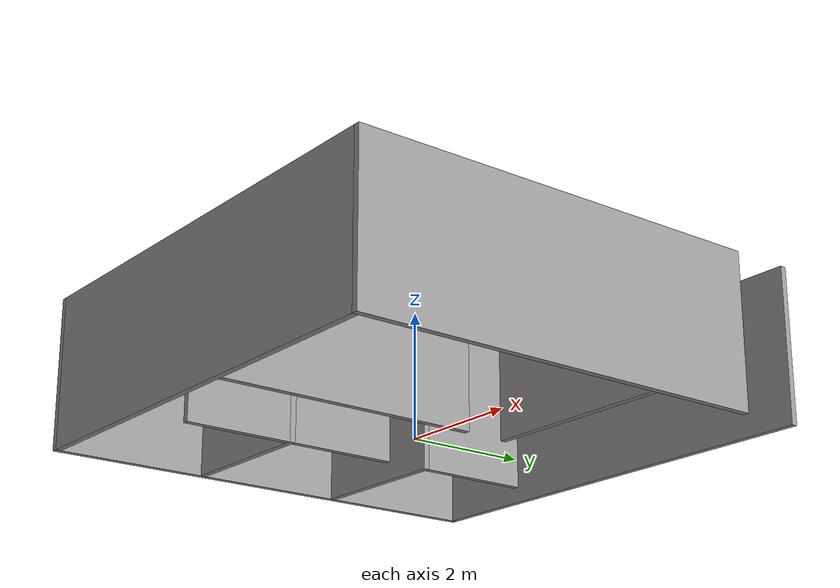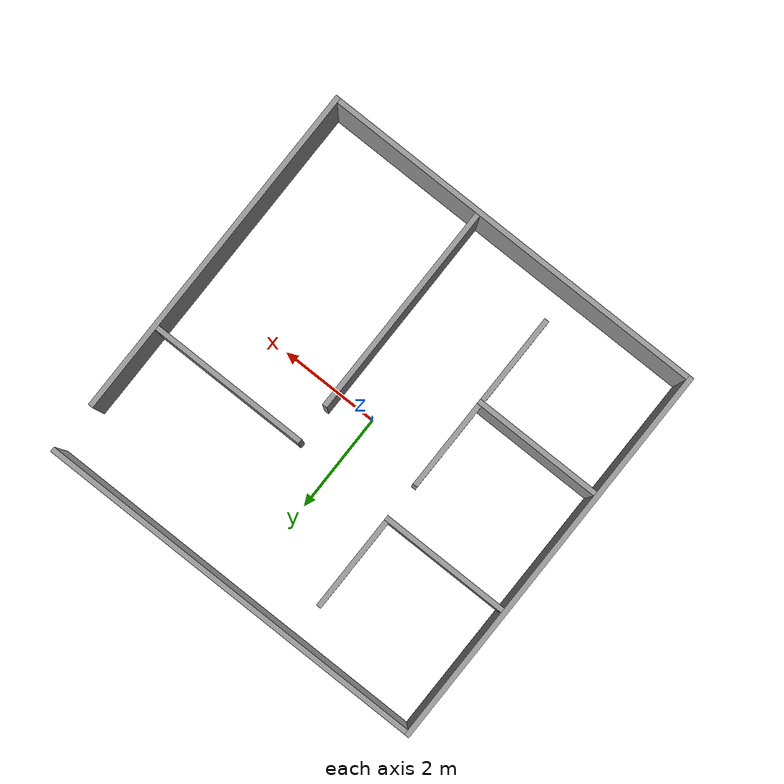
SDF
<?xml version="1.0" ?>
  <sdf version="1.5">
  <model name='office'>

    <static>1</static>

    <link name='Wall_10'>
        <pose>-3.950 0.0 1.25 0.0 0.0 0.0</pose>

        <visual name='Wall_10_Visual'>
            <pose>0 0 0 0 -0 0</pose>
            <geometry>
                <box>
                    <size>0.1 8.0 2.5</size>
                </box>
            </geometry>
              <material>
                <ambient>0.6 0.6 0.6 1</ambient>
                <diffuse>0.6 0.6 0.6 1</diffuse>
                <specular>0.6 0.6 0.6 1</specular>
              </material>
        <cast_shadows>0</cast_shadows>
      </visual>

      <collision name='Wall_10_Collision'>
        <max_contacts>10</max_contacts>
        <pose>0 0 0.0 0 0 0</pose>
        <geometry>
          <box>
            <size>0.1 8.0 2.5</size>
          </box>
        </geometry>
        <surface>
          <friction>
            <ode>
              <mu>1</mu>
              <mu2>1</mu2>
              <fdir1>0 0 0</fdir1>
              <slip1>0</slip1>
              <slip2>0</slip2>
            </ode>
          </friction>
          <bounce>
            <restitution_coefficient>0</restitution_coefficient>
            <threshold>1e+06</threshold>
          </bounce>
          <contact>
            <collide_without_contact>0</collide_without_contact>
            <collide_without_contact_bitmask>1</collide_without_contact_bitmask>
            <collide_bitmask>1</collide_bitmask>
            <ode>
              <soft_cfm>0</soft_cfm>
              <soft_erp>0.2</soft_erp>
              <kp>1e+13</kp>
              <kd>1</kd>
              <max_vel>0.01</max_vel>
              <min_depth>0</min_depth>
            </ode>
            <bullet>
              <split_impulse>1</split_impulse>
              <split_impulse_penetration_threshold>-0.01</split_impulse_penetration_threshold>
              <soft_cfm>0</soft_cfm>
              <soft_erp>0.2</soft_erp>
              <kp>1e+13</kp>
              <kd>1</kd>
            </bullet>
          </contact>
        </surface>
      </collision>
    </link>

    <link name='Wall_20'>
          <pose>3.950 -0.525 1.25 0.0 0.0 0.0</pose>

          <visual name='Wall_20_Visual'>
              <pose>0 0 0 0 -0 0</pose>
              <geometry>
                  <box>
                      <size>0.1 6.950 2.5</size>
                  </box>
              </geometry>
              <material>
                <ambient>0.6 0.6 0.6 1</ambient>
                <diffuse>0.6 0.6 0.6 1</diffuse>
                <specular>0.6 0.6 0.6 1</specular>
              </material>
          <cast_shadows>0</cast_shadows>
        </visual>

        <collision name='Wall_20_Collision'>
          <max_contacts>10</max_contacts>
          <pose>0 0 0.0 0 0 0</pose>
          <geometry>
            <box>
              <size>0.1 6.950 2.5</size>
            </box>
          </geometry>
          <surface>
            <friction>
              <ode>
                <mu>1</mu>
                <mu2>1</mu2>
                <fdir1>0 0 0</fdir1>
                <slip1>0</slip1>
                <slip2>0</slip2>
              </ode>
            </friction>
            <bounce>
              <restitution_coefficient>0</restitution_coefficient>
              <threshold>1e+06</threshold>
            </bounce>
            <contact>
              <collide_without_contact>0</collide_without_contact>
              <collide_without_contact_bitmask>1</collide_without_contact_bitmask>
              <collide_bitmask>1</collide_bitmask>
              <ode>
                <soft_cfm>0</soft_cfm>
                <soft_erp>0.2</soft_erp>
                <kp>1e+13</kp>
                <kd>1</kd>
                <max_vel>0.01</max_vel>
                <min_depth>0</min_depth>
              </ode>
              <bullet>
                <split_impulse>1</split_impulse>
                <split_impulse_penetration_threshold>-0.01</split_impulse_penetration_threshold>
                <soft_cfm>0</soft_cfm>
                <soft_erp>0.2</soft_erp>
                <kp>1e+13</kp>
                <kd>1</kd>
              </bullet>
            </contact>
          </surface>
        </collision>
    </link>

    <link name='Wall_30'>
        <pose>0.0 -3.950 1.25 0.0 0.0 0.0</pose>

        <visual name='Wall_30_Visual'>
            <pose>0 0 0 0 -0 0</pose>
            <geometry>
                <box>
                    <size>7.8 0.1 2.5</size>
                </box>
            </geometry>
              <material>
                <ambient>0.6 0.6 0.6 1</ambient>
                <diffuse>0.6 0.6 0.6 1</diffuse>
                <specular>0.6 0.6 0.6 1</specular>
              </material>
        <cast_shadows>0</cast_shadows>
      </visual>

      <collision name='Wall_30_Collision'>
        <max_contacts>10</max_contacts>
        <pose>0 0 0.0 0 0 0</pose>
        <geometry>
          <box>
            <size>7.8 0.1 2.5</size>
          </box>
        </geometry>
        <surface>
          <friction>
            <ode>
              <mu>1</mu>
              <mu2>1</mu2>
              <fdir1>0 0 0</fdir1>
              <slip1>0</slip1>
              <slip2>0</slip2>
            </ode>
          </friction>
          <bounce>
            <restitution_coefficient>0</restitution_coefficient>
            <threshold>1e+06</threshold>
          </bounce>
          <contact>
            <collide_without_contact>0</collide_without_contact>
            <collide_without_contact_bitmask>1</collide_without_contact_bitmask>
            <collide_bitmask>1</collide_bitmask>
            <ode>
              <soft_cfm>0</soft_cfm>
              <soft_erp>0.2</soft_erp>
              <kp>1e+13</kp>
              <kd>1</kd>
              <max_vel>0.01</max_vel>
              <min_depth>0</min_depth>
            </ode>
            <bullet>
              <split_impulse>1</split_impulse>
              <split_impulse_penetration_threshold>-0.01</split_impulse_penetration_threshold>
              <soft_cfm>0</soft_cfm>
              <soft_erp>0.2</soft_erp>
              <kp>1e+13</kp>
              <kd>1</kd>
            </bullet>
          </contact>
        </surface>
      </collision>
    </link>

    <link name='Wall_40'>
        <pose>0.05 3.950 1.25 0.0 0.0 0.0</pose>

        <visual name='Wall_40_Visual'>
            <pose>0 0 0 0 -0 0</pose>
            <geometry>
                <box>
                    <size>7.9 0.1 2.5</size>
                </box>
            </geometry>
              <material>
                <ambient>0.6 0.6 0.6 1</ambient>
                <diffuse>0.6 0.6 0.6 1</diffuse>
                <specular>0.6 0.6 0.6 1</specular>
              </material>
        <cast_shadows>0</cast_shadows>
      </visual>

      <collision name='Wall_40_Collision'>
        <max_contacts>10</max_contacts>
        <pose>0 0 0.0 0 0 0</pose>
        <geometry>
          <box>
            <size>7.9 0.1 2.5</size>
          </box>
        </geometry>
        <surface>
          <friction>
            <ode>
              <mu>1</mu>
              <mu2>1</mu2>
              <fdir1>0 0 0</fdir1>
              <slip1>0</slip1>
              <slip2>0</slip2>
            </ode>
          </friction>
          <bounce>
            <restitution_coefficient>0</restitution_coefficient>
            <threshold>1e+06</threshold>
          </bounce>
          <contact>
            <collide_without_contact>0</collide_without_contact>
            <collide_without_contact_bitmask>1</collide_without_contact_bitmask>
            <collide_bitmask>1</collide_bitmask>
            <ode>
              <soft_cfm>0</soft_cfm>
              <soft_erp>0.2</soft_erp>
              <kp>1e+13</kp>
              <kd>1</kd>
              <max_vel>0.01</max_vel>
              <min_depth>0</min_depth>
            </ode>
            <bullet>
              <split_impulse>1</split_impulse>
              <split_impulse_penetration_threshold>-0.01</split_impulse_penetration_threshold>
              <soft_cfm>0</soft_cfm>
              <soft_erp>0.2</soft_erp>
              <kp>1e+13</kp>
              <kd>1</kd>
            </bullet>
          </contact>
        </surface>
      </collision>
    </link>

    <link name='Wall_50'>
        <pose>-1.35 -2.3 1.25 0.0 0.0 0.0</pose>

        <visual name='Wall_50_Visual'>
            <pose>0 0 0 0 -0 0</pose>
            <geometry>
                <box>
                    <size>0.1 1.8 2.5</size>
                </box>
            </geometry>
              <material>
                <ambient>0.6 0.6 0.6 1</ambient>
                <diffuse>0.6 0.6 0.6 1</diffuse>
                <specular>0.6 0.6 0.6 1</specular>
              </material>
        <cast_shadows>0</cast_shadows>
      </visual>

      <collision name='Wall_50_Collision'>
        <max_contacts>10</max_contacts>
        <pose>0 0 0.0 0 0 0</pose>
        <geometry>
          <box>
            <size>0.1 1.8 2.5</size>
          </box>
        </geometry>
        <surface>
          <friction>
            <ode>
              <mu>1</mu>
              <mu2>1</mu2>
              <fdir1>0 0 0</fdir1>
              <slip1>0</slip1>
              <slip2>0</slip2>
            </ode>
          </friction>
          <bounce>
            <restitution_coefficient>0</restitution_coefficient>
            <threshold>1e+06</threshold>
          </bounce>
          <contact>
            <collide_without_contact>0</collide_without_contact>
            <collide_without_contact_bitmask>1</collide_without_contact_bitmask>
            <collide_bitmask>1</collide_bitmask>
            <ode>
              <soft_cfm>0</soft_cfm>
              <soft_erp>0.2</soft_erp>
              <kp>1e+13</kp>
              <kd>1</kd>
              <max_vel>0.01</max_vel>
              <min_depth>0</min_depth>
            </ode>
            <bullet>
              <split_impulse>1</split_impulse>
              <split_impulse_penetration_threshold>-0.01</split_impulse_penetration_threshold>
              <soft_cfm>0</soft_cfm>
              <soft_erp>0.2</soft_erp>
              <kp>1e+13</kp>
              <kd>1</kd>
            </bullet>
          </contact>
        </surface>
      </collision>
    </link>

    <link name='Wall_60'>
        <pose>0.75 -1.75 1.25 0.0 0.0 0.0</pose>

        <visual name='Wall_60_Visual'>
            <pose>0 0 0 0 -0 0</pose>
            <geometry>
                <box>
                    <size>0.1 4.3 2.5</size>
                </box>
            </geometry>
              <material>
                <ambient>0.6 0.6 0.6 1</ambient>
                <diffuse>0.6 0.6 0.6 1</diffuse>
                <specular>0.6 0.6 0.6 1</specular>
              </material>
        <cast_shadows>0</cast_shadows>
      </visual>

      <collision name='Wall_60_Collision'>
        <max_contacts>10</max_contacts>
        <pose>0 0 0.0 0 0 0</pose>
        <geometry>
          <box>
            <size>0.1 4.3 2.5</size>
          </box>
        </geometry>
        <surface>
          <friction>
            <ode>
              <mu>1</mu>
              <mu2>1</mu2>
              <fdir1>0 0 0</fdir1>
              <slip1>0</slip1>
              <slip2>0</slip2>
            </ode>
          </friction>
          <bounce>
            <restitution_coefficient>0</restitution_coefficient>
            <threshold>1e+06</threshold>
          </bounce>
          <contact>
            <collide_without_contact>0</collide_without_contact>
            <collide_without_contact_bitmask>1</collide_without_contact_bitmask>
            <collide_bitmask>1</collide_bitmask>
            <ode>
              <soft_cfm>0</soft_cfm>
              <soft_erp>0.2</soft_erp>
              <kp>1e+13</kp>
              <kd>1</kd>
              <max_vel>0.01</max_vel>
              <min_depth>0</min_depth>
            </ode>
            <bullet>
              <split_impulse>1</split_impulse>
              <split_impulse_penetration_threshold>-0.01</split_impulse_penetration_threshold>
              <soft_cfm>0</soft_cfm>
              <soft_erp>0.2</soft_erp>
              <kp>1e+13</kp>
              <kd>1</kd>
            </bullet>
          </contact>
        </surface>
      </collision>
    </link>

    <link name='Wall_70'>
        <pose>-2.6 -1.35 1.25 0.0 0.0 0.0</pose>

        <visual name='Wall_70_Visual'>
            <pose>0 0 0 0 -0 0</pose>
            <geometry>
                <box>
                    <size>2.6 0.1 2.5</size>
                </box>
            </geometry>
              <material>
                <ambient>0.6 0.6 0.6 1</ambient>
                <diffuse>0.6 0.6 0.6 1</diffuse>
                <specular>0.6 0.6 0.6 1</specular>
              </material>
        <cast_shadows>0</cast_shadows>
      </visual>

      <collision name='Wall_70_Collision'>
        <max_contacts>10</max_contacts>
        <pose>0 0 0.0 0 0 0</pose>
        <geometry>
          <box>
            <size>2.6 0.1 2.5</size>
          </box>
        </geometry>
        <surface>
          <friction>
            <ode>
              <mu>1</mu>
              <mu2>1</mu2>
              <fdir1>0 0 0</fdir1>
              <slip1>0</slip1>
              <slip2>0</slip2>
            </ode>
          </friction>
          <bounce>
            <restitution_coefficient>0</restitution_coefficient>
            <threshold>1e+06</threshold>
          </bounce>
          <contact>
            <collide_without_contact>0</collide_without_contact>
            <collide_without_contact_bitmask>1</collide_without_contact_bitmask>
            <collide_bitmask>1</collide_bitmask>
            <ode>
              <soft_cfm>0</soft_cfm>
              <soft_erp>0.2</soft_erp>
              <kp>1e+13</kp>
              <kd>1</kd>
              <max_vel>0.01</max_vel>
              <min_depth>0</min_depth>
            </ode>
            <bullet>
              <split_impulse>1</split_impulse>
              <split_impulse_penetration_threshold>-0.01</split_impulse_penetration_threshold>
              <soft_cfm>0</soft_cfm>
              <soft_erp>0.2</soft_erp>
              <kp>1e+13</kp>
              <kd>1</kd>
            </bullet>
          </contact>
        </surface>
      </collision>
    </link>

    <link name='Wall_80'>
        <pose>-1.35 -0.4 1.25 0.0 0.0 0.0</pose>

        <visual name='Wall_80_Visual'>
            <pose>0 0 0 0 -0 0</pose>
            <geometry>
                <box>
                    <size>0.1 1.8 2.5</size>
                </box>
            </geometry>
              <material>
                <ambient>0.6 0.6 0.6 1</ambient>
                <diffuse>0.6 0.6 0.6 1</diffuse>
                <specular>0.6 0.6 0.6 1</specular>
              </material>
        <cast_shadows>0</cast_shadows>
      </visual>

      <collision name='Wall_80_Collision'>
        <max_contacts>10</max_contacts>
        <pose>0 0 0.0 0 0 0</pose>
        <geometry>
          <box>
            <size>0.1 1.8 2.5</size>
          </box>
        </geometry>
        <surface>
          <friction>
            <ode>
              <mu>1</mu>
              <mu2>1</mu2>
              <fdir1>0 0 0</fdir1>
              <slip1>0</slip1>
              <slip2>0</slip2>
            </ode>
          </friction>
          <bounce>
            <restitution_coefficient>0</restitution_coefficient>
            <threshold>1e+06</threshold>
          </bounce>
          <contact>
            <collide_without_contact>0</collide_without_contact>
            <collide_without_contact_bitmask>1</collide_without_contact_bitmask>
            <collide_bitmask>1</collide_bitmask>
            <ode>
              <soft_cfm>0</soft_cfm>
              <soft_erp>0.2</soft_erp>
              <kp>1e+13</kp>
              <kd>1</kd>
              <max_vel>0.01</max_vel>
              <min_depth>0</min_depth>
            </ode>
            <bullet>
              <split_impulse>1</split_impulse>
              <split_impulse_penetration_threshold>-0.01</split_impulse_penetration_threshold>
              <soft_cfm>0</soft_cfm>
              <soft_erp>0.2</soft_erp>
              <kp>1e+13</kp>
              <kd>1</kd>
            </bullet>
          </contact>
        </surface>
      </collision>
    </link>

    <link name='Wall_90'>
        <pose>2.3 1.15 1.25 0.0 0.0 0.0</pose>

        <visual name='Wall_90_Visual'>
            <pose>0 0 0 0 -0 0</pose>
            <geometry>
                <box>
                    <size>3.2 0.1 2.5</size>
                </box>
            </geometry>
              <material>
                <ambient>0.6 0.6 0.6 1</ambient>
                <diffuse>0.6 0.6 0.6 1</diffuse>
                <specular>0.6 0.6 0.6 1</specular>
              </material>
        <cast_shadows>0</cast_shadows>
      </visual>

      <collision name='Wall_90_Collision'>
        <max_contacts>10</max_contacts>
        <pose>0 0 0.0 0 0 0</pose>
        <geometry>
          <box>
            <size>3.2 0.1 2.5</size>
          </box>
        </geometry>
        <surface>
          <friction>
            <ode>
              <mu>1</mu>
              <mu2>1</mu2>
              <fdir1>0 0 0</fdir1>
              <slip1>0</slip1>
              <slip2>0</slip2>
            </ode>
          </friction>
          <bounce>
            <restitution_coefficient>0</restitution_coefficient>
            <threshold>1e+06</threshold>
          </bounce>
          <contact>
            <collide_without_contact>0</collide_without_contact>
            <collide_without_contact_bitmask>1</collide_without_contact_bitmask>
            <collide_bitmask>1</collide_bitmask>
            <ode>
              <soft_cfm>0</soft_cfm>
              <soft_erp>0.2</soft_erp>
              <kp>1e+13</kp>
              <kd>1</kd>
              <max_vel>0.01</max_vel>
              <min_depth>0</min_depth>
            </ode>
            <bullet>
              <split_impulse>1</split_impulse>
              <split_impulse_penetration_threshold>-0.01</split_impulse_penetration_threshold>
              <soft_cfm>0</soft_cfm>
              <soft_erp>0.2</soft_erp>
              <kp>1e+13</kp>
              <kd>1</kd>
            </bullet>
          </contact>
        </surface>
      </collision>
    </link>

    <link name='Wall_100'>
        <pose>-2.6 1.25 1.25 0.0 0.0 0.0</pose>

        <visual name='Wall_100_Visual'>
            <pose>0 0 0 0 -0 0</pose>
            <geometry>
                <box>
                    <size>2.6 0.1 2.5</size>
                </box>
            </geometry>
              <material>
                <ambient>0.6 0.6 0.6 1</ambient>
                <diffuse>0.6 0.6 0.6 1</diffuse>
                <specular>0.6 0.6 0.6 1</specular>
              </material>
        <cast_shadows>0</cast_shadows>
      </visual>

      <collision name='Wall_100_Collision'>
        <max_contacts>10</max_contacts>
        <pose>0 0 0.0 0 0 0</pose>
        <geometry>
          <box>
            <size>2.6 0.1 2.5</size>
          </box>
        </geometry>
        <surface>
          <friction>
            <ode>
              <mu>1</mu>
              <mu2>1</mu2>
              <fdir1>0 0 0</fdir1>
              <slip1>0</slip1>
              <slip2>0</slip2>
            </ode>
          </friction>
          <bounce>
            <restitution_coefficient>0</restitution_coefficient>
            <threshold>1e+06</threshold>
          </bounce>
          <contact>
            <collide_without_contact>0</collide_without_contact>
            <collide_without_contact_bitmask>1</collide_without_contact_bitmask>
            <collide_bitmask>1</collide_bitmask>
            <ode>
              <soft_cfm>0</soft_cfm>
              <soft_erp>0.2</soft_erp>
              <kp>1e+13</kp>
              <kd>1</kd>
              <max_vel>0.01</max_vel>
              <min_depth>0</min_depth>
            </ode>
            <bullet>
              <split_impulse>1</split_impulse>
              <split_impulse_penetration_threshold>-0.01</split_impulse_penetration_threshold>
              <soft_cfm>0</soft_cfm>
              <soft_erp>0.2</soft_erp>
              <kp>1e+13</kp>
              <kd>1</kd>
            </bullet>
          </contact>
        </surface>
      </collision>
    </link>

    <link name='Wall_110'>
        <pose>-1.35 2.25 1.25 0.0 0.0 0.0</pose>

        <visual name='Wall_110_Visual'>
            <pose>0 0 0 0 -0 0</pose>
            <geometry>
                <box>
                    <size>0.1 1.9 2.5</size>
                </box>
            </geometry>
              <material>
                <ambient>0.6 0.6 0.6 1</ambient>
                <diffuse>0.6 0.6 0.6 1</diffuse>
                <specular>0.6 0.6 0.6 1</specular>
              </material>
        <cast_shadows>0</cast_shadows>
      </visual>

      <collision name='Wall_110_Collision'>
        <max_contacts>10</max_contacts>
        <pose>0 0 0.0 0 0 0</pose>
        <geometry>
          <box>
            <size>0.1 1.9 2.5</size>
          </box>
        </geometry>
        <surface>
          <friction>
            <ode>
              <mu>1</mu>
              <mu2>1</mu2>
              <fdir1>0 0 0</fdir1>
              <slip1>0</slip1>
              <slip2>0</slip2>
            </ode>
          </friction>
          <bounce>
            <restitution_coefficient>0</restitution_coefficient>
            <threshold>1e+06</threshold>
          </bounce>
          <contact>
            <collide_without_contact>0</collide_without_contact>
            <collide_without_contact_bitmask>1</collide_without_contact_bitmask>
            <collide_bitmask>1</collide_bitmask>
            <ode>
              <soft_cfm>0</soft_cfm>
              <soft_erp>0.2</soft_erp>
              <kp>1e+13</kp>
              <kd>1</kd>
              <max_vel>0.01</max_vel>
              <min_depth>0</min_depth>
            </ode>
            <bullet>
              <split_impulse>1</split_impulse>
              <split_impulse_penetration_threshold>-0.01</split_impulse_penetration_threshold>
              <soft_cfm>0</soft_cfm>
              <soft_erp>0.2</soft_erp>
              <kp>1e+13</kp>
              <kd>1</kd>
            </bullet>
          </contact>
        </surface>
      </collision>
    </link>

  </model>
  </sdf>
